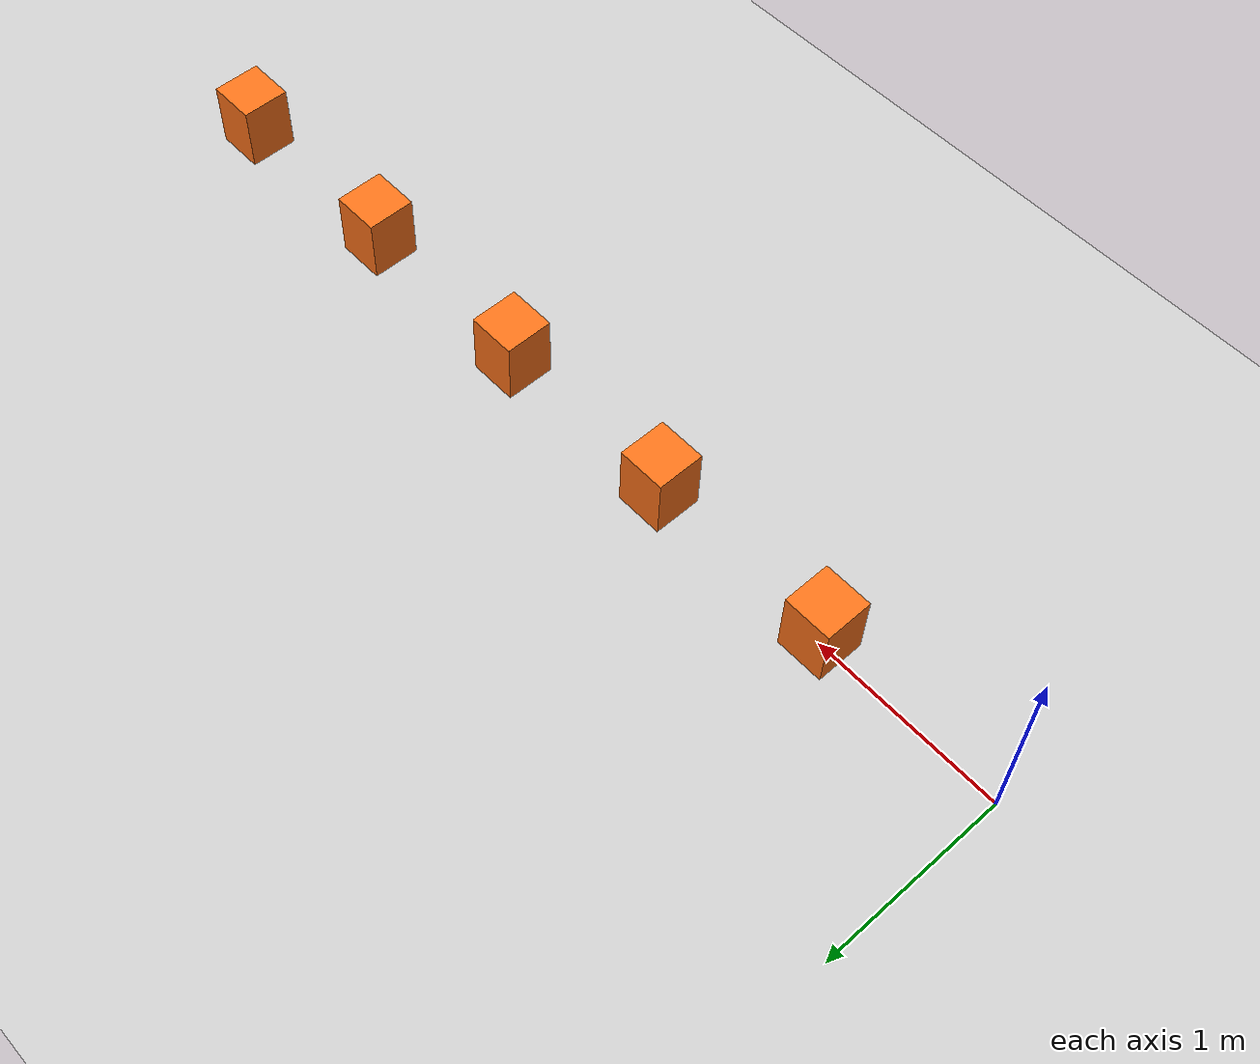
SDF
<?xml version="1.0"?>
<sdf version="1.4">
  <world name="racecar_tunnel">
    <scene>
      <ambient>0.75 0.75 0.75 1.0</ambient>
    </scene>

    <include>
      <uri>model://sun</uri>
    </include>

    <model name="ground_plane">
      <static>true</static>
      <link name="link">
        <collision name="collision">
          <geometry>
            <plane>
              <normal>0 0 1</normal>
              <size>150 150</size>
            </plane>
          </geometry>
          <surface>
            <friction>
              <ode>
                <mu>100</mu>
                <mu2>50</mu2>
              </ode>
            </friction>
          </surface>
        </collision>
        <visual name="visual">
          <cast_shadows>false</cast_shadows>
          <geometry>
            <plane>
              <normal>0 0 1</normal>
              <size>150 150</size>
            </plane>
          </geometry>
          <material>
            <script>
              <uri>file://media/materials/scripts/gazebo.material</uri>
              <name>Gazebo/Grey</name>
            </script>
          </material>
        </visual>
      </link>
    </model>

    <include>
      <uri>model://racecar_description/models/cone</uri>
      <pose>1 0 0 0 0 0</pose>
      <name>cone_1</name>
    </include>
    <include>
      <uri>model://racecar_description/models/cone</uri>
      <pose>2 0 0 0 0 0</pose>
      <name>cone_2</name>
    </include>
    <include>
      <uri>model://racecar_description/models/cone</uri>
      <pose>3 0 0 0 0 0</pose>
      <name>cone_3</name>
    </include>
    <include>
      <uri>model://racecar_description/models/cone</uri>
      <pose>4 0 0 0 0 0</pose>
      <name>cone_4</name>
    </include>
    <include>
      <uri>model://racecar_description/models/cone</uri>
      <pose>5 0 0 0 0 0</pose>
      <name>cone_5</name>
    </include>
  </world>
</sdf>

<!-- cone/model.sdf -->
<sdf version="1.6">
  <model name="cone">
    <static>true</static>
    <link name="link">
      <pose>0 0 0.1750 0 0 0</pose>
      <collision name="collision">
        <geometry><box><size>0.25 0.25 0.35</size></box></geometry>
      </collision>
      <visual name="visual">
        <geometry><box><size>0.25 0.25 0.35</size></box></geometry>
        <material>
          <ambient>1.0 0.45 0.1 1.0</ambient>
          <diffuse>1.0 0.45 0.1 1.0</diffuse>
        </material>
      </visual>
    </link>
  </model>
</sdf>
